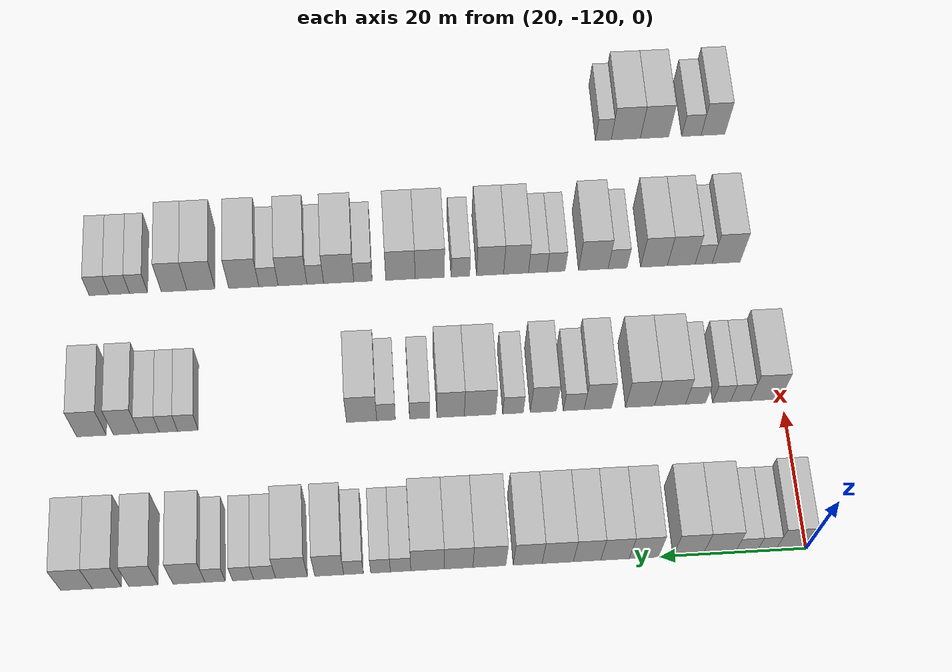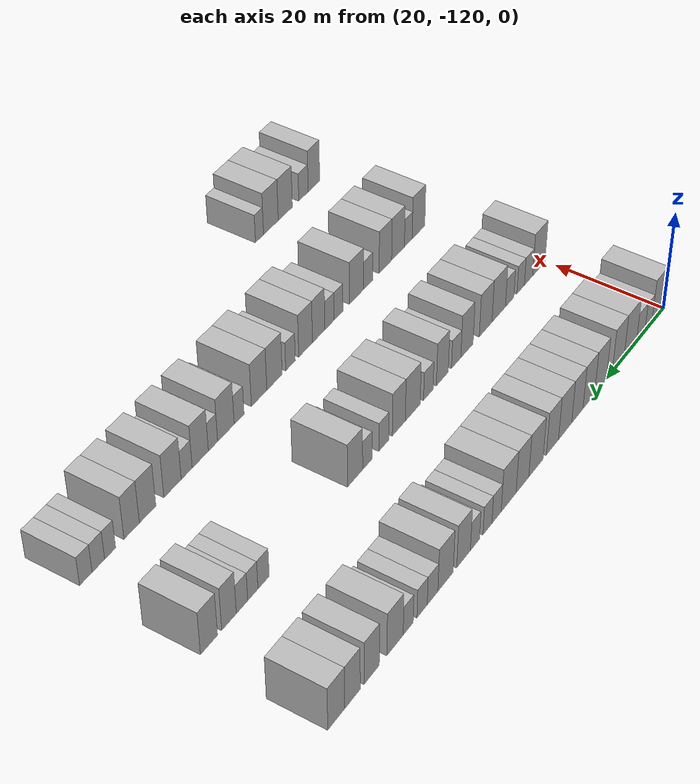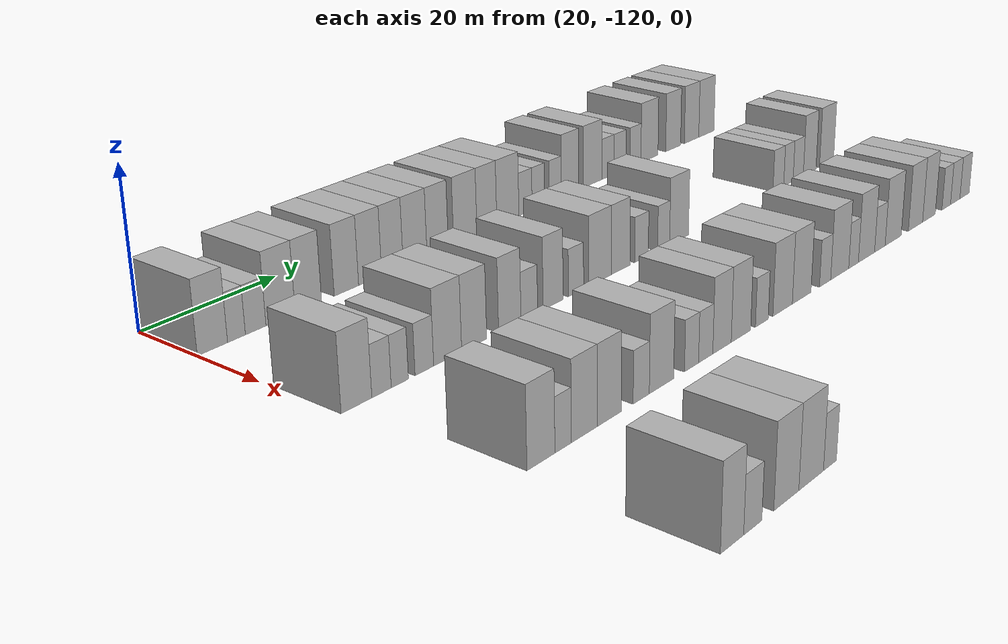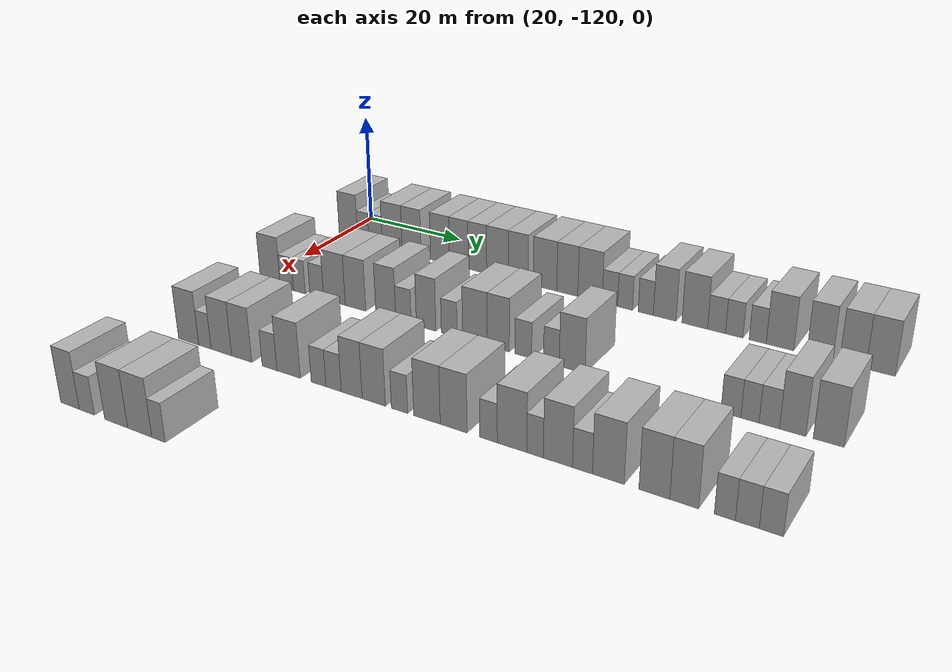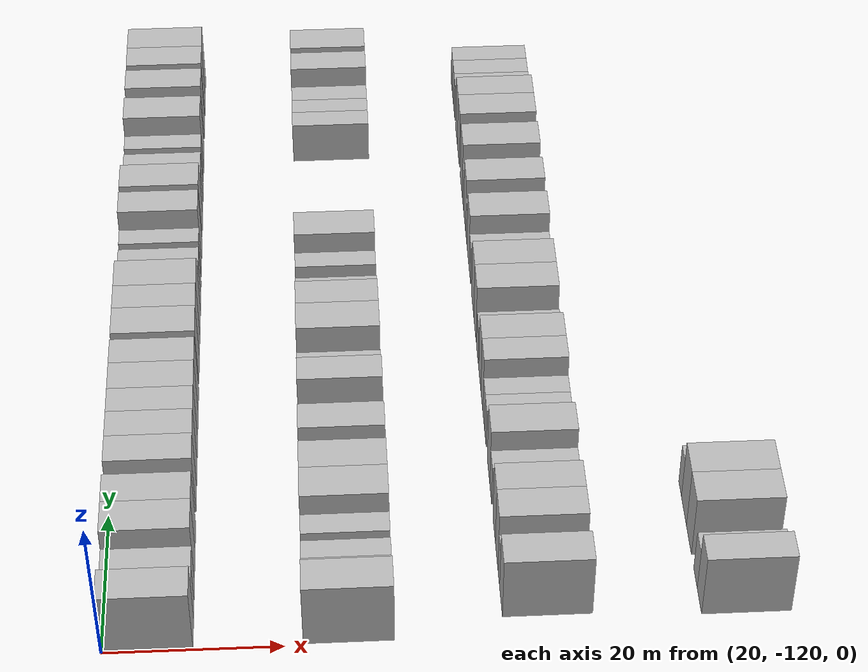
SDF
<sdf version="1.6">
 <world name="default">
  <model name="building_56">
   <static>1</static>
   <pose>25.0000 -117.8487 0 0.000000 0.000000 0.000000</pose>
   <link name="link">
    <pose>0 0 4.50 0 0 0</pose>
    <collision name="collision"><geometry><box><size>10.0000 4.1759 9.0000</size></box></geometry></collision>
    <visual name="visual">
     <cast_shadows>0</cast_shadows>
     <geometry><box><size>10.0000 4.1759 9.0000</size></box></geometry>
     <material>
      <script>
       <uri>model://HANNAS_wall/materials/scripts</uri>
       <uri>model://HANNAS_wall/materials/textures</uri>
       <name>vrc/HANNAS_wall</name>
      </script>
     </material>
    </visual>
   </link>
  </model>
  <model name="building_57">
   <static>1</static>
   <pose>25.0000 -114.4972 0 0.000000 0.000000 0.000000</pose>
   <link name="link">
    <pose>0 0 3.00 0 0 0</pose>
    <collision name="collision"><geometry><box><size>10.0000 2.5272 6.0000</size></box></geometry></collision>
    <visual name="visual">
     <cast_shadows>0</cast_shadows>
     <geometry><box><size>10.0000 2.5272 6.0000</size></box></geometry>
     <material>
      <script>
       <uri>model://HANNAS_wall/materials/scripts</uri>
       <uri>model://HANNAS_wall/materials/textures</uri>
       <name>vrc/HANNAS_wall</name>
      </script>
     </material>
    </visual>
   </link>
  </model>
  <model name="building_58">
   <static>1</static>
   <pose>25.0000 -111.7395 0 0.000000 0.000000 0.000000</pose>
   <link name="link">
    <pose>0 0 3.00 0 0 0</pose>
    <collision name="collision"><geometry><box><size>10.0000 2.9881 6.0000</size></box></geometry></collision>
    <visual name="visual">
     <cast_shadows>0</cast_shadows>
     <geometry><box><size>10.0000 2.9881 6.0000</size></box></geometry>
     <material>
      <script>
       <uri>model://HANNAS_wall/materials/scripts</uri>
       <uri>model://HANNAS_wall/materials/textures</uri>
       <name>vrc/HANNAS_wall</name>
      </script>
     </material>
    </visual>
   </link>
  </model>
  <model name="building_59">
   <static>1</static>
   <pose>25.0000 -108.0608 0 0.000000 0.000000 0.000000</pose>
   <link name="link">
    <pose>0 0 4.50 0 0 0</pose>
    <collision name="collision"><geometry><box><size>10.0000 4.3694 9.0000</size></box></geometry></collision>
    <visual name="visual">
     <cast_shadows>0</cast_shadows>
     <geometry><box><size>10.0000 4.3694 9.0000</size></box></geometry>
     <material>
      <script>
       <uri>model://HANNAS_wall/materials/scripts</uri>
       <uri>model://HANNAS_wall/materials/textures</uri>
       <name>vrc/HANNAS_wall</name>
      </script>
     </material>
    </visual>
   </link>
  </model>
  <model name="building_60">
   <static>1</static>
   <pose>25.0000 -103.8270 0 0.000000 0.000000 0.000000</pose>
   <link name="link">
    <pose>0 0 4.50 0 0 0</pose>
    <collision name="collision"><geometry><box><size>10.0000 4.0984 9.0000</size></box></geometry></collision>
    <visual name="visual">
     <cast_shadows>0</cast_shadows>
     <geometry><box><size>10.0000 4.0984 9.0000</size></box></geometry>
     <material>
      <script>
       <uri>model://HANNAS_wall/materials/scripts</uri>
       <uri>model://HANNAS_wall/materials/textures</uri>
       <name>vrc/HANNAS_wall</name>
      </script>
     </material>
    </visual>
   </link>
  </model>
  <model name="building_61">
   <static>1</static>
   <pose>25.0000 -97.7860 0 0.000000 0.000000 0.000000</pose>
   <link name="link">
    <pose>0 0 4.50 0 0 0</pose>
    <collision name="collision"><geometry><box><size>10.0000 3.9835 9.0000</size></box></geometry></collision>
    <visual name="visual">
     <cast_shadows>0</cast_shadows>
     <geometry><box><size>10.0000 3.9835 9.0000</size></box></geometry>
     <material>
      <script>
       <uri>model://HANNAS_wall/materials/scripts</uri>
       <uri>model://HANNAS_wall/materials/textures</uri>
       <name>vrc/HANNAS_wall</name>
      </script>
     </material>
    </visual>
   </link>
  </model>
  <model name="building_62">
   <static>1</static>
   <pose>25.0000 -93.8536 0 0.000000 0.000000 0.000000</pose>
   <link name="link">
    <pose>0 0 4.50 0 0 0</pose>
    <collision name="collision"><geometry><box><size>10.0000 3.8813 9.0000</size></box></geometry></collision>
    <visual name="visual">
     <cast_shadows>0</cast_shadows>
     <geometry><box><size>10.0000 3.8813 9.0000</size></box></geometry>
     <material>
      <script>
       <uri>model://HANNAS_wall/materials/scripts</uri>
       <uri>model://HANNAS_wall/materials/textures</uri>
       <name>vrc/HANNAS_wall</name>
      </script>
     </material>
    </visual>
   </link>
  </model>
  <model name="building_63">
   <static>1</static>
   <pose>25.0000 -90.0538 0 0.000000 0.000000 0.000000</pose>
   <link name="link">
    <pose>0 0 4.50 0 0 0</pose>
    <collision name="collision"><geometry><box><size>10.0000 3.7184 9.0000</size></box></geometry></collision>
    <visual name="visual">
     <cast_shadows>0</cast_shadows>
     <geometry><box><size>10.0000 3.7184 9.0000</size></box></geometry>
     <material>
      <script>
       <uri>model://HANNAS_wall/materials/scripts</uri>
       <uri>model://HANNAS_wall/materials/textures</uri>
       <name>vrc/HANNAS_wall</name>
      </script>
     </material>
    </visual>
   </link>
  </model>
  <model name="building_64">
   <static>1</static>
   <pose>25.0000 -86.0671 0 0.000000 0.000000 0.000000</pose>
   <link name="link">
    <pose>0 0 4.50 0 0 0</pose>
    <collision name="collision"><geometry><box><size>10.0000 4.2550 9.0000</size></box></geometry></collision>
    <visual name="visual">
     <cast_shadows>0</cast_shadows>
     <geometry><box><size>10.0000 4.2550 9.0000</size></box></geometry>
     <material>
      <script>
       <uri>model://HANNAS_wall/materials/scripts</uri>
       <uri>model://HANNAS_wall/materials/textures</uri>
       <name>vrc/HANNAS_wall</name>
      </script>
     </material>
    </visual>
   </link>
  </model>
  <model name="building_65">
   <static>1</static>
   <pose>25.0000 -81.9779 0 0.000000 0.000000 0.000000</pose>
   <link name="link">
    <pose>0 0 4.50 0 0 0</pose>
    <collision name="collision"><geometry><box><size>10.0000 3.9235 9.0000</size></box></geometry></collision>
    <visual name="visual">
     <cast_shadows>0</cast_shadows>
     <geometry><box><size>10.0000 3.9235 9.0000</size></box></geometry>
     <material>
      <script>
       <uri>model://HANNAS_wall/materials/scripts</uri>
       <uri>model://HANNAS_wall/materials/textures</uri>
       <name>vrc/HANNAS_wall</name>
      </script>
     </material>
    </visual>
   </link>
  </model>
  <model name="building_66">
   <static>1</static>
   <pose>25.0000 -76.7819 0 0.000000 0.000000 0.000000</pose>
   <link name="link">
    <pose>0 0 4.50 0 0 0</pose>
    <collision name="collision"><geometry><box><size>10.0000 4.4684 9.0000</size></box></geometry></collision>
    <visual name="visual">
     <cast_shadows>0</cast_shadows>
     <geometry><box><size>10.0000 4.4684 9.0000</size></box></geometry>
     <material>
      <script>
       <uri>model://HANNAS_wall/materials/scripts</uri>
       <uri>model://HANNAS_wall/materials/textures</uri>
       <name>vrc/HANNAS_wall</name>
      </script>
     </material>
    </visual>
   </link>
  </model>
  <model name="building_67">
   <static>1</static>
   <pose>25.0000 -72.5863 0 0.000000 0.000000 0.000000</pose>
   <link name="link">
    <pose>0 0 4.50 0 0 0</pose>
    <collision name="collision"><geometry><box><size>10.0000 3.9229 9.0000</size></box></geometry></collision>
    <visual name="visual">
     <cast_shadows>0</cast_shadows>
     <geometry><box><size>10.0000 3.9229 9.0000</size></box></geometry>
     <material>
      <script>
       <uri>model://HANNAS_wall/materials/scripts</uri>
       <uri>model://HANNAS_wall/materials/textures</uri>
       <name>vrc/HANNAS_wall</name>
      </script>
     </material>
    </visual>
   </link>
  </model>
  <model name="building_68">
   <static>1</static>
   <pose>25.0000 -68.3762 0 0.000000 0.000000 0.000000</pose>
   <link name="link">
    <pose>0 0 4.50 0 0 0</pose>
    <collision name="collision"><geometry><box><size>10.0000 4.4973 9.0000</size></box></geometry></collision>
    <visual name="visual">
     <cast_shadows>0</cast_shadows>
     <geometry><box><size>10.0000 4.4973 9.0000</size></box></geometry>
     <material>
      <script>
       <uri>model://HANNAS_wall/materials/scripts</uri>
       <uri>model://HANNAS_wall/materials/textures</uri>
       <name>vrc/HANNAS_wall</name>
      </script>
     </material>
    </visual>
   </link>
  </model>
  <model name="building_69">
   <static>1</static>
   <pose>25.0000 -64.7457 0 0.000000 0.000000 0.000000</pose>
   <link name="link">
    <pose>0 0 3.00 0 0 0</pose>
    <collision name="collision"><geometry><box><size>10.0000 2.7636 6.0000</size></box></geometry></collision>
    <visual name="visual">
     <cast_shadows>0</cast_shadows>
     <geometry><box><size>10.0000 2.7636 6.0000</size></box></geometry>
     <material>
      <script>
       <uri>model://HANNAS_wall/materials/scripts</uri>
       <uri>model://HANNAS_wall/materials/textures</uri>
       <name>vrc/HANNAS_wall</name>
      </script>
     </material>
    </visual>
   </link>
  </model>
  <model name="building_70">
   <static>1</static>
   <pose>25.0000 -62.0378 0 0.000000 0.000000 0.000000</pose>
   <link name="link">
    <pose>0 0 3.00 0 0 0</pose>
    <collision name="collision"><geometry><box><size>10.0000 2.6523 6.0000</size></box></geometry></collision>
    <visual name="visual">
     <cast_shadows>0</cast_shadows>
     <geometry><box><size>10.0000 2.6523 6.0000</size></box></geometry>
     <material>
      <script>
       <uri>model://HANNAS_wall/materials/scripts</uri>
       <uri>model://HANNAS_wall/materials/textures</uri>
       <name>vrc/HANNAS_wall</name>
      </script>
     </material>
    </visual>
   </link>
  </model>
  <model name="building_71">
   <static>1</static>
   <pose>25.0000 -58.3904 0 0.000000 0.000000 0.000000</pose>
   <link name="link">
    <pose>0 0 3.00 0 0 0</pose>
    <collision name="collision"><geometry><box><size>10.0000 2.6423 6.0000</size></box></geometry></collision>
    <visual name="visual">
     <cast_shadows>0</cast_shadows>
     <geometry><box><size>10.0000 2.6423 6.0000</size></box></geometry>
     <material>
      <script>
       <uri>model://HANNAS_wall/materials/scripts</uri>
       <uri>model://HANNAS_wall/materials/textures</uri>
       <name>vrc/HANNAS_wall</name>
      </script>
     </material>
    </visual>
   </link>
  </model>
  <model name="building_72">
   <static>1</static>
   <pose>25.0000 -55.1116 0 0.000000 0.000000 0.000000</pose>
   <link name="link">
    <pose>0 0 4.50 0 0 0</pose>
    <collision name="collision"><geometry><box><size>10.0000 3.9153 9.0000</size></box></geometry></collision>
    <visual name="visual">
     <cast_shadows>0</cast_shadows>
     <geometry><box><size>10.0000 3.9153 9.0000</size></box></geometry>
     <material>
      <script>
       <uri>model://HANNAS_wall/materials/scripts</uri>
       <uri>model://HANNAS_wall/materials/textures</uri>
       <name>vrc/HANNAS_wall</name>
      </script>
     </material>
    </visual>
   </link>
  </model>
  <model name="building_73">
   <static>1</static>
   <pose>25.0000 -50.0067 0 0.000000 0.000000 0.000000</pose>
   <link name="link">
    <pose>0 0 4.50 0 0 0</pose>
    <collision name="collision"><geometry><box><size>10.0000 4.2946 9.0000</size></box></geometry></collision>
    <visual name="visual">
     <cast_shadows>0</cast_shadows>
     <geometry><box><size>10.0000 4.2946 9.0000</size></box></geometry>
     <material>
      <script>
       <uri>model://HANNAS_wall/materials/scripts</uri>
       <uri>model://HANNAS_wall/materials/textures</uri>
       <name>vrc/HANNAS_wall</name>
      </script>
     </material>
    </visual>
   </link>
  </model>
  <model name="building_74">
   <static>1</static>
   <pose>25.0000 -46.3844 0 0.000000 0.000000 0.000000</pose>
   <link name="link">
    <pose>0 0 3.00 0 0 0</pose>
    <collision name="collision"><geometry><box><size>10.0000 2.9500 6.0000</size></box></geometry></collision>
    <visual name="visual">
     <cast_shadows>0</cast_shadows>
     <geometry><box><size>10.0000 2.9500 6.0000</size></box></geometry>
     <material>
      <script>
       <uri>model://HANNAS_wall/materials/scripts</uri>
       <uri>model://HANNAS_wall/materials/textures</uri>
       <name>vrc/HANNAS_wall</name>
      </script>
     </material>
    </visual>
   </link>
  </model>
  <model name="building_75">
   <static>1</static>
   <pose>25.0000 -43.4953 0 0.000000 0.000000 0.000000</pose>
   <link name="link">
    <pose>0 0 3.00 0 0 0</pose>
    <collision name="collision"><geometry><box><size>10.0000 2.8283 6.0000</size></box></geometry></collision>
    <visual name="visual">
     <cast_shadows>0</cast_shadows>
     <geometry><box><size>10.0000 2.8283 6.0000</size></box></geometry>
     <material>
      <script>
       <uri>model://HANNAS_wall/materials/scripts</uri>
       <uri>model://HANNAS_wall/materials/textures</uri>
       <name>vrc/HANNAS_wall</name>
      </script>
     </material>
    </visual>
   </link>
  </model>
  <model name="building_76">
   <static>1</static>
   <pose>25.0000 -39.7241 0 0.000000 0.000000 0.000000</pose>
   <link name="link">
    <pose>0 0 3.00 0 0 0</pose>
    <collision name="collision"><geometry><box><size>10.0000 2.7141 6.0000</size></box></geometry></collision>
    <visual name="visual">
     <cast_shadows>0</cast_shadows>
     <geometry><box><size>10.0000 2.7141 6.0000</size></box></geometry>
     <material>
      <script>
       <uri>model://HANNAS_wall/materials/scripts</uri>
       <uri>model://HANNAS_wall/materials/textures</uri>
       <name>vrc/HANNAS_wall</name>
      </script>
     </material>
    </visual>
   </link>
  </model>
  <model name="building_77">
   <static>1</static>
   <pose>25.0000 -36.2111 0 0.000000 0.000000 0.000000</pose>
   <link name="link">
    <pose>0 0 4.50 0 0 0</pose>
    <collision name="collision"><geometry><box><size>10.0000 4.3118 9.0000</size></box></geometry></collision>
    <visual name="visual">
     <cast_shadows>0</cast_shadows>
     <geometry><box><size>10.0000 4.3118 9.0000</size></box></geometry>
     <material>
      <script>
       <uri>model://HANNAS_wall/materials/scripts</uri>
       <uri>model://HANNAS_wall/materials/textures</uri>
       <name>vrc/HANNAS_wall</name>
      </script>
     </material>
    </visual>
   </link>
  </model>
  <model name="building_78">
   <static>1</static>
   <pose>25.0000 -30.0892 0 0.000000 0.000000 0.000000</pose>
   <link name="link">
    <pose>0 0 4.50 0 0 0</pose>
    <collision name="collision"><geometry><box><size>10.0000 3.9320 9.0000</size></box></geometry></collision>
    <visual name="visual">
     <cast_shadows>0</cast_shadows>
     <geometry><box><size>10.0000 3.9320 9.0000</size></box></geometry>
     <material>
      <script>
       <uri>model://HANNAS_wall/materials/scripts</uri>
       <uri>model://HANNAS_wall/materials/textures</uri>
       <name>vrc/HANNAS_wall</name>
      </script>
     </material>
    </visual>
   </link>
  </model>
  <model name="building_79">
   <static>1</static>
   <pose>25.0000 -25.1634 0 0.000000 0.000000 0.000000</pose>
   <link name="link">
    <pose>0 0 4.50 0 0 0</pose>
    <collision name="collision"><geometry><box><size>10.0000 3.9196 9.0000</size></box></geometry></collision>
    <visual name="visual">
     <cast_shadows>0</cast_shadows>
     <geometry><box><size>10.0000 3.9196 9.0000</size></box></geometry>
     <material>
      <script>
       <uri>model://HANNAS_wall/materials/scripts</uri>
       <uri>model://HANNAS_wall/materials/textures</uri>
       <name>vrc/HANNAS_wall</name>
      </script>
     </material>
    </visual>
   </link>
  </model>
  <model name="building_80">
   <static>1</static>
   <pose>25.0000 -21.0916 0 0.000000 0.000000 0.000000</pose>
   <link name="link">
    <pose>0 0 4.50 0 0 0</pose>
    <collision name="collision"><geometry><box><size>10.0000 4.2241 9.0000</size></box></geometry></collision>
    <visual name="visual">
     <cast_shadows>0</cast_shadows>
     <geometry><box><size>10.0000 4.2241 9.0000</size></box></geometry>
     <material>
      <script>
       <uri>model://HANNAS_wall/materials/scripts</uri>
       <uri>model://HANNAS_wall/materials/textures</uri>
       <name>vrc/HANNAS_wall</name>
      </script>
     </material>
    </visual>
   </link>
  </model>
  <model name="building_238">
   <static>1</static>
   <pose>47.0000 -117.5903 0 0.000000 0.000000 0.000000</pose>
   <link name="link">
    <pose>0 0 4.50 0 0 0</pose>
    <collision name="collision"><geometry><box><size>10.0000 4.3043 9.0000</size></box></geometry></collision>
    <visual name="visual">
     <cast_shadows>0</cast_shadows>
     <geometry><box><size>10.0000 4.3043 9.0000</size></box></geometry>
     <material>
      <script>
       <uri>model://HANNAS_wall/materials/scripts</uri>
       <uri>model://HANNAS_wall/materials/textures</uri>
       <name>vrc/HANNAS_wall</name>
      </script>
     </material>
    </visual>
   </link>
  </model>
  <model name="building_239">
   <static>1</static>
   <pose>47.0000 -114.0368 0 0.000000 0.000000 0.000000</pose>
   <link name="link">
    <pose>0 0 3.00 0 0 0</pose>
    <collision name="collision"><geometry><box><size>10.0000 2.8027 6.0000</size></box></geometry></collision>
    <visual name="visual">
     <cast_shadows>0</cast_shadows>
     <geometry><box><size>10.0000 2.8027 6.0000</size></box></geometry>
     <material>
      <script>
       <uri>model://HANNAS_wall/materials/scripts</uri>
       <uri>model://HANNAS_wall/materials/textures</uri>
       <name>vrc/HANNAS_wall</name>
      </script>
     </material>
    </visual>
   </link>
  </model>
  <model name="building_240">
   <static>1</static>
   <pose>47.0000 -111.3630 0 0.000000 0.000000 0.000000</pose>
   <link name="link">
    <pose>0 0 3.00 0 0 0</pose>
    <collision name="collision"><geometry><box><size>10.0000 2.5449 6.0000</size></box></geometry></collision>
    <visual name="visual">
     <cast_shadows>0</cast_shadows>
     <geometry><box><size>10.0000 2.5449 6.0000</size></box></geometry>
     <material>
      <script>
       <uri>model://HANNAS_wall/materials/scripts</uri>
       <uri>model://HANNAS_wall/materials/textures</uri>
       <name>vrc/HANNAS_wall</name>
      </script>
     </material>
    </visual>
   </link>
  </model>
  <model name="building_241">
   <static>1</static>
   <pose>47.0000 -107.6647 0 0.000000 0.000000 0.000000</pose>
   <link name="link">
    <pose>0 0 3.00 0 0 0</pose>
    <collision name="collision"><geometry><box><size>10.0000 2.8516 6.0000</size></box></geometry></collision>
    <visual name="visual">
     <cast_shadows>0</cast_shadows>
     <geometry><box><size>10.0000 2.8516 6.0000</size></box></geometry>
     <material>
      <script>
       <uri>model://HANNAS_wall/materials/scripts</uri>
       <uri>model://HANNAS_wall/materials/textures</uri>
       <name>vrc/HANNAS_wall</name>
      </script>
     </material>
    </visual>
   </link>
  </model>
  <model name="building_242">
   <static>1</static>
   <pose>47.0000 -104.0226 0 0.000000 0.000000 0.000000</pose>
   <link name="link">
    <pose>0 0 4.50 0 0 0</pose>
    <collision name="collision"><geometry><box><size>10.0000 4.4327 9.0000</size></box></geometry></collision>
    <visual name="visual">
     <cast_shadows>0</cast_shadows>
     <geometry><box><size>10.0000 4.4327 9.0000</size></box></geometry>
     <material>
      <script>
       <uri>model://HANNAS_wall/materials/scripts</uri>
       <uri>model://HANNAS_wall/materials/textures</uri>
       <name>vrc/HANNAS_wall</name>
      </script>
     </material>
    </visual>
   </link>
  </model>
  <model name="building_243">
   <static>1</static>
   <pose>47.0000 -99.7467 0 0.000000 0.000000 0.000000</pose>
   <link name="link">
    <pose>0 0 4.50 0 0 0</pose>
    <collision name="collision"><geometry><box><size>10.0000 4.1191 9.0000</size></box></geometry></collision>
    <visual name="visual">
     <cast_shadows>0</cast_shadows>
     <geometry><box><size>10.0000 4.1191 9.0000</size></box></geometry>
     <material>
      <script>
       <uri>model://HANNAS_wall/materials/scripts</uri>
       <uri>model://HANNAS_wall/materials/textures</uri>
       <name>vrc/HANNAS_wall</name>
      </script>
     </material>
    </visual>
   </link>
  </model>
  <model name="building_244">
   <static>1</static>
   <pose>47.0000 -93.7500 0 0.000000 0.000000 0.000000</pose>
   <link name="link">
    <pose>0 0 4.50 0 0 0</pose>
    <collision name="collision"><geometry><box><size>10.0000 3.8743 9.0000</size></box></geometry></collision>
    <visual name="visual">
     <cast_shadows>0</cast_shadows>
     <geometry><box><size>10.0000 3.8743 9.0000</size></box></geometry>
     <material>
      <script>
       <uri>model://HANNAS_wall/materials/scripts</uri>
       <uri>model://HANNAS_wall/materials/textures</uri>
       <name>vrc/HANNAS_wall</name>
      </script>
     </material>
    </visual>
   </link>
  </model>
  <model name="building_245">
   <static>1</static>
   <pose>47.0000 -90.3319 0 0.000000 0.000000 0.000000</pose>
   <link name="link">
    <pose>0 0 3.00 0 0 0</pose>
    <collision name="collision"><geometry><box><size>10.0000 2.9618 6.0000</size></box></geometry></collision>
    <visual name="visual">
     <cast_shadows>0</cast_shadows>
     <geometry><box><size>10.0000 2.9618 6.0000</size></box></geometry>
     <material>
      <script>
       <uri>model://HANNAS_wall/materials/scripts</uri>
       <uri>model://HANNAS_wall/materials/textures</uri>
       <name>vrc/HANNAS_wall</name>
      </script>
     </material>
    </visual>
   </link>
  </model>
  <model name="building_246">
   <static>1</static>
   <pose>47.0000 -86.0115 0 0.000000 0.000000 0.000000</pose>
   <link name="link">
    <pose>0 0 4.50 0 0 0</pose>
    <collision name="collision"><geometry><box><size>10.0000 3.6789 9.0000</size></box></geometry></collision>
    <visual name="visual">
     <cast_shadows>0</cast_shadows>
     <geometry><box><size>10.0000 3.6789 9.0000</size></box></geometry>
     <material>
      <script>
       <uri>model://HANNAS_wall/materials/scripts</uri>
       <uri>model://HANNAS_wall/materials/textures</uri>
       <name>vrc/HANNAS_wall</name>
      </script>
     </material>
    </visual>
   </link>
  </model>
  <model name="building_247">
   <static>1</static>
   <pose>47.0000 -81.7189 0 0.000000 0.000000 0.000000</pose>
   <link name="link">
    <pose>0 0 3.00 0 0 0</pose>
    <collision name="collision"><geometry><box><size>10.0000 2.9064 6.0000</size></box></geometry></collision>
    <visual name="visual">
     <cast_shadows>0</cast_shadows>
     <geometry><box><size>10.0000 2.9064 6.0000</size></box></geometry>
     <material>
      <script>
       <uri>model://HANNAS_wall/materials/scripts</uri>
       <uri>model://HANNAS_wall/materials/textures</uri>
       <name>vrc/HANNAS_wall</name>
      </script>
     </material>
    </visual>
   </link>
  </model>
  <model name="building_248">
   <static>1</static>
   <pose>47.0000 -77.0469 0 0.000000 0.000000 0.000000</pose>
   <link name="link">
    <pose>0 0 4.50 0 0 0</pose>
    <collision name="collision"><geometry><box><size>10.0000 4.4375 9.0000</size></box></geometry></collision>
    <visual name="visual">
     <cast_shadows>0</cast_shadows>
     <geometry><box><size>10.0000 4.4375 9.0000</size></box></geometry>
     <material>
      <script>
       <uri>model://HANNAS_wall/materials/scripts</uri>
       <uri>model://HANNAS_wall/materials/textures</uri>
       <name>vrc/HANNAS_wall</name>
      </script>
     </material>
    </visual>
   </link>
  </model>
  <model name="building_249">
   <static>1</static>
   <pose>47.0000 -72.8980 0 0.000000 0.000000 0.000000</pose>
   <link name="link">
    <pose>0 0 4.50 0 0 0</pose>
    <collision name="collision"><geometry><box><size>10.0000 3.8602 9.0000</size></box></geometry></collision>
    <visual name="visual">
     <cast_shadows>0</cast_shadows>
     <geometry><box><size>10.0000 3.8602 9.0000</size></box></geometry>
     <material>
      <script>
       <uri>model://HANNAS_wall/materials/scripts</uri>
       <uri>model://HANNAS_wall/materials/textures</uri>
       <name>vrc/HANNAS_wall</name>
      </script>
     </material>
    </visual>
   </link>
  </model>
  <model name="building_250">
   <static>1</static>
   <pose>47.0000 -68.5308 0 0.000000 0.000000 0.000000</pose>
   <link name="link">
    <pose>0 0 3.00 0 0 0</pose>
    <collision name="collision"><geometry><box><size>10.0000 2.8742 6.0000</size></box></geometry></collision>
    <visual name="visual">
     <cast_shadows>0</cast_shadows>
     <geometry><box><size>10.0000 2.8742 6.0000</size></box></geometry>
     <material>
      <script>
       <uri>model://HANNAS_wall/materials/scripts</uri>
       <uri>model://HANNAS_wall/materials/textures</uri>
       <name>vrc/HANNAS_wall</name>
      </script>
     </material>
    </visual>
   </link>
  </model>
  <model name="building_251">
   <static>1</static>
   <pose>47.0000 -63.7763 0 0.000000 0.000000 0.000000</pose>
   <link name="link">
    <pose>0 0 3.00 0 0 0</pose>
    <collision name="collision"><geometry><box><size>10.0000 2.6347 6.0000</size></box></geometry></collision>
    <visual name="visual">
     <cast_shadows>0</cast_shadows>
     <geometry><box><size>10.0000 2.6347 6.0000</size></box></geometry>
     <material>
      <script>
       <uri>model://HANNAS_wall/materials/scripts</uri>
       <uri>model://HANNAS_wall/materials/textures</uri>
       <name>vrc/HANNAS_wall</name>
      </script>
     </material>
    </visual>
   </link>
  </model>
  <model name="building_252">
   <static>1</static>
   <pose>47.0000 -60.3356 0 0.000000 0.000000 0.000000</pose>
   <link name="link">
    <pose>0 0 4.50 0 0 0</pose>
    <collision name="collision"><geometry><box><size>10.0000 4.2467 9.0000</size></box></geometry></collision>
    <visual name="visual">
     <cast_shadows>0</cast_shadows>
     <geometry><box><size>10.0000 4.2467 9.0000</size></box></geometry>
     <material>
      <script>
       <uri>model://HANNAS_wall/materials/scripts</uri>
       <uri>model://HANNAS_wall/materials/textures</uri>
       <name>vrc/HANNAS_wall</name>
      </script>
     </material>
    </visual>
   </link>
  </model>
  <model name="building_253">
   <static>1</static>
   <pose>47.0000 -35.9007 0 0.000000 0.000000 0.000000</pose>
   <link name="link">
    <pose>0 0 3.00 0 0 0</pose>
    <collision name="collision"><geometry><box><size>10.0000 2.8744 6.0000</size></box></geometry></collision>
    <visual name="visual">
     <cast_shadows>0</cast_shadows>
     <geometry><box><size>10.0000 2.8744 6.0000</size></box></geometry>
     <material>
      <script>
       <uri>model://HANNAS_wall/materials/scripts</uri>
       <uri>model://HANNAS_wall/materials/textures</uri>
       <name>vrc/HANNAS_wall</name>
      </script>
     </material>
    </visual>
   </link>
  </model>
  <model name="building_254">
   <static>1</static>
   <pose>47.0000 -33.1793 0 0.000000 0.000000 0.000000</pose>
   <link name="link">
    <pose>0 0 3.00 0 0 0</pose>
    <collision name="collision"><geometry><box><size>10.0000 2.5685 6.0000</size></box></geometry></collision>
    <visual name="visual">
     <cast_shadows>0</cast_shadows>
     <geometry><box><size>10.0000 2.5685 6.0000</size></box></geometry>
     <material>
      <script>
       <uri>model://HANNAS_wall/materials/scripts</uri>
       <uri>model://HANNAS_wall/materials/textures</uri>
       <name>vrc/HANNAS_wall</name>
      </script>
     </material>
    </visual>
   </link>
  </model>
  <model name="building_255">
   <static>1</static>
   <pose>47.0000 -30.4765 0 0.000000 0.000000 0.000000</pose>
   <link name="link">
    <pose>0 0 3.00 0 0 0</pose>
    <collision name="collision"><geometry><box><size>10.0000 2.8370 6.0000</size></box></geometry></collision>
    <visual name="visual">
     <cast_shadows>0</cast_shadows>
     <geometry><box><size>10.0000 2.8370 6.0000</size></box></geometry>
     <material>
      <script>
       <uri>model://HANNAS_wall/materials/scripts</uri>
       <uri>model://HANNAS_wall/materials/textures</uri>
       <name>vrc/HANNAS_wall</name>
      </script>
     </material>
    </visual>
   </link>
  </model>
  <model name="building_256">
   <static>1</static>
   <pose>47.0000 -27.2536 0 0.000000 0.000000 0.000000</pose>
   <link name="link">
    <pose>0 0 4.50 0 0 0</pose>
    <collision name="collision"><geometry><box><size>10.0000 3.6088 9.0000</size></box></geometry></collision>
    <visual name="visual">
     <cast_shadows>0</cast_shadows>
     <geometry><box><size>10.0000 3.6088 9.0000</size></box></geometry>
     <material>
      <script>
       <uri>model://HANNAS_wall/materials/scripts</uri>
       <uri>model://HANNAS_wall/materials/textures</uri>
       <name>vrc/HANNAS_wall</name>
      </script>
     </material>
    </visual>
   </link>
  </model>
  <model name="building_257">
   <static>1</static>
   <pose>47.0000 -22.3882 0 0.000000 0.000000 0.000000</pose>
   <link name="link">
    <pose>0 0 4.50 0 0 0</pose>
    <collision name="collision"><geometry><box><size>10.0000 4.1220 9.0000</size></box></geometry></collision>
    <visual name="visual">
     <cast_shadows>0</cast_shadows>
     <geometry><box><size>10.0000 4.1220 9.0000</size></box></geometry>
     <material>
      <script>
       <uri>model://HANNAS_wall/materials/scripts</uri>
       <uri>model://HANNAS_wall/materials/textures</uri>
       <name>vrc/HANNAS_wall</name>
      </script>
     </material>
    </visual>
   </link>
  </model>
  <model name="building_427">
   <static>1</static>
   <pose>69.0000 -114.9938 0 0.000000 0.000000 0.000000</pose>
   <link name="link">
    <pose>0 0 4.50 0 0 0</pose>
    <collision name="collision"><geometry><box><size>10.0000 4.1623 9.0000</size></box></geometry></collision>
    <visual name="visual">
     <cast_shadows>0</cast_shadows>
     <geometry><box><size>10.0000 4.1623 9.0000</size></box></geometry>
     <material>
      <script>
       <uri>model://HANNAS_wall/materials/scripts</uri>
       <uri>model://HANNAS_wall/materials/textures</uri>
       <name>vrc/HANNAS_wall</name>
      </script>
     </material>
    </visual>
   </link>
  </model>
  <model name="building_428">
   <static>1</static>
   <pose>69.0000 -111.6530 0 0.000000 0.000000 0.000000</pose>
   <link name="link">
    <pose>0 0 3.00 0 0 0</pose>
    <collision name="collision"><geometry><box><size>10.0000 2.5192 6.0000</size></box></geometry></collision>
    <visual name="visual">
     <cast_shadows>0</cast_shadows>
     <geometry><box><size>10.0000 2.5192 6.0000</size></box></geometry>
     <material>
      <script>
       <uri>model://HANNAS_wall/materials/scripts</uri>
       <uri>model://HANNAS_wall/materials/textures</uri>
       <name>vrc/HANNAS_wall</name>
      </script>
     </material>
    </visual>
   </link>
  </model>
  <model name="building_429">
   <static>1</static>
   <pose>69.0000 -108.3375 0 0.000000 0.000000 0.000000</pose>
   <link name="link">
    <pose>0 0 4.50 0 0 0</pose>
    <collision name="collision"><geometry><box><size>10.0000 4.1119 9.0000</size></box></geometry></collision>
    <visual name="visual">
     <cast_shadows>0</cast_shadows>
     <geometry><box><size>10.0000 4.1119 9.0000</size></box></geometry>
     <material>
      <script>
       <uri>model://HANNAS_wall/materials/scripts</uri>
       <uri>model://HANNAS_wall/materials/textures</uri>
       <name>vrc/HANNAS_wall</name>
      </script>
     </material>
    </visual>
   </link>
  </model>
  <model name="building_430">
   <static>1</static>
   <pose>69.0000 -104.2997 0 0.000000 0.000000 0.000000</pose>
   <link name="link">
    <pose>0 0 4.50 0 0 0</pose>
    <collision name="collision"><geometry><box><size>10.0000 3.9636 9.0000</size></box></geometry></collision>
    <visual name="visual">
     <cast_shadows>0</cast_shadows>
     <geometry><box><size>10.0000 3.9636 9.0000</size></box></geometry>
     <material>
      <script>
       <uri>model://HANNAS_wall/materials/scripts</uri>
       <uri>model://HANNAS_wall/materials/textures</uri>
       <name>vrc/HANNAS_wall</name>
      </script>
     </material>
    </visual>
   </link>
  </model>
  <model name="building_431">
   <static>1</static>
   <pose>69.0000 -98.9158 0 0.000000 0.000000 0.000000</pose>
   <link name="link">
    <pose>0 0 3.00 0 0 0</pose>
    <collision name="collision"><geometry><box><size>10.0000 2.8044 6.0000</size></box></geometry></collision>
    <visual name="visual">
     <cast_shadows>0</cast_shadows>
     <geometry><box><size>10.0000 2.8044 6.0000</size></box></geometry>
     <material>
      <script>
       <uri>model://HANNAS_wall/materials/scripts</uri>
       <uri>model://HANNAS_wall/materials/textures</uri>
       <name>vrc/HANNAS_wall</name>
      </script>
     </material>
    </visual>
   </link>
  </model>
  <model name="building_432">
   <static>1</static>
   <pose>69.0000 -95.3265 0 0.000000 0.000000 0.000000</pose>
   <link name="link">
    <pose>0 0 4.50 0 0 0</pose>
    <collision name="collision"><geometry><box><size>10.0000 4.3743 9.0000</size></box></geometry></collision>
    <visual name="visual">
     <cast_shadows>0</cast_shadows>
     <geometry><box><size>10.0000 4.3743 9.0000</size></box></geometry>
     <material>
      <script>
       <uri>model://HANNAS_wall/materials/scripts</uri>
       <uri>model://HANNAS_wall/materials/textures</uri>
       <name>vrc/HANNAS_wall</name>
      </script>
     </material>
    </visual>
   </link>
  </model>
  <model name="building_433">
   <static>1</static>
   <pose>69.0000 -89.8105 0 0.000000 0.000000 0.000000</pose>
   <link name="link">
    <pose>0 0 3.00 0 0 0</pose>
    <collision name="collision"><geometry><box><size>10.0000 2.6577 6.0000</size></box></geometry></collision>
    <visual name="visual">
     <cast_shadows>0</cast_shadows>
     <geometry><box><size>10.0000 2.6577 6.0000</size></box></geometry>
     <material>
      <script>
       <uri>model://HANNAS_wall/materials/scripts</uri>
       <uri>model://HANNAS_wall/materials/textures</uri>
       <name>vrc/HANNAS_wall</name>
      </script>
     </material>
    </visual>
   </link>
  </model>
  <model name="building_434">
   <static>1</static>
   <pose>69.0000 -87.1051 0 0.000000 0.000000 0.000000</pose>
   <link name="link">
    <pose>0 0 3.00 0 0 0</pose>
    <collision name="collision"><geometry><box><size>10.0000 2.7531 6.0000</size></box></geometry></collision>
    <visual name="visual">
     <cast_shadows>0</cast_shadows>
     <geometry><box><size>10.0000 2.7531 6.0000</size></box></geometry>
     <material>
      <script>
       <uri>model://HANNAS_wall/materials/scripts</uri>
       <uri>model://HANNAS_wall/materials/textures</uri>
       <name>vrc/HANNAS_wall</name>
      </script>
     </material>
    </visual>
   </link>
  </model>
  <model name="building_435">
   <static>1</static>
   <pose>69.0000 -83.8964 0 0.000000 0.000000 0.000000</pose>
   <link name="link">
    <pose>0 0 4.50 0 0 0</pose>
    <collision name="collision"><geometry><box><size>10.0000 3.6643 9.0000</size></box></geometry></collision>
    <visual name="visual">
     <cast_shadows>0</cast_shadows>
     <geometry><box><size>10.0000 3.6643 9.0000</size></box></geometry>
     <material>
      <script>
       <uri>model://HANNAS_wall/materials/scripts</uri>
       <uri>model://HANNAS_wall/materials/textures</uri>
       <name>vrc/HANNAS_wall</name>
      </script>
     </material>
    </visual>
   </link>
  </model>
  <model name="building_436">
   <static>1</static>
   <pose>69.0000 -80.0698 0 0.000000 0.000000 0.000000</pose>
   <link name="link">
    <pose>0 0 4.50 0 0 0</pose>
    <collision name="collision"><geometry><box><size>10.0000 3.9888 9.0000</size></box></geometry></collision>
    <visual name="visual">
     <cast_shadows>0</cast_shadows>
     <geometry><box><size>10.0000 3.9888 9.0000</size></box></geometry>
     <material>
      <script>
       <uri>model://HANNAS_wall/materials/scripts</uri>
       <uri>model://HANNAS_wall/materials/textures</uri>
       <name>vrc/HANNAS_wall</name>
      </script>
     </material>
    </visual>
   </link>
  </model>
  <model name="building_437">
   <static>1</static>
   <pose>69.0000 -75.7055 0 0.000000 0.000000 0.000000</pose>
   <link name="link">
    <pose>0 0 3.00 0 0 0</pose>
    <collision name="collision"><geometry><box><size>10.0000 2.7397 6.0000</size></box></geometry></collision>
    <visual name="visual">
     <cast_shadows>0</cast_shadows>
     <geometry><box><size>10.0000 2.7397 6.0000</size></box></geometry>
     <material>
      <script>
       <uri>model://HANNAS_wall/materials/scripts</uri>
       <uri>model://HANNAS_wall/materials/textures</uri>
       <name>vrc/HANNAS_wall</name>
      </script>
     </material>
    </visual>
   </link>
  </model>
  <model name="building_438">
   <static>1</static>
   <pose>69.0000 -71.1767 0 0.000000 0.000000 0.000000</pose>
   <link name="link">
    <pose>0 0 4.50 0 0 0</pose>
    <collision name="collision"><geometry><box><size>10.0000 4.3180 9.0000</size></box></geometry></collision>
    <visual name="visual">
     <cast_shadows>0</cast_shadows>
     <geometry><box><size>10.0000 4.3180 9.0000</size></box></geometry>
     <material>
      <script>
       <uri>model://HANNAS_wall/materials/scripts</uri>
       <uri>model://HANNAS_wall/materials/textures</uri>
       <name>vrc/HANNAS_wall</name>
      </script>
     </material>
    </visual>
   </link>
  </model>
  <model name="building_439">
   <static>1</static>
   <pose>69.0000 -66.8743 0 0.000000 0.000000 0.000000</pose>
   <link name="link">
    <pose>0 0 4.50 0 0 0</pose>
    <collision name="collision"><geometry><box><size>10.0000 4.2867 9.0000</size></box></geometry></collision>
    <visual name="visual">
     <cast_shadows>0</cast_shadows>
     <geometry><box><size>10.0000 4.2867 9.0000</size></box></geometry>
     <material>
      <script>
       <uri>model://HANNAS_wall/materials/scripts</uri>
       <uri>model://HANNAS_wall/materials/textures</uri>
       <name>vrc/HANNAS_wall</name>
      </script>
     </material>
    </visual>
   </link>
  </model>
  <model name="building_440">
   <static>1</static>
   <pose>69.0000 -61.3905 0 0.000000 0.000000 0.000000</pose>
   <link name="link">
    <pose>0 0 3.00 0 0 0</pose>
    <collision name="collision"><geometry><box><size>10.0000 2.6811 6.0000</size></box></geometry></collision>
    <visual name="visual">
     <cast_shadows>0</cast_shadows>
     <geometry><box><size>10.0000 2.6811 6.0000</size></box></geometry>
     <material>
      <script>
       <uri>model://HANNAS_wall/materials/scripts</uri>
       <uri>model://HANNAS_wall/materials/textures</uri>
       <name>vrc/HANNAS_wall</name>
      </script>
     </material>
    </visual>
   </link>
  </model>
  <model name="building_441">
   <static>1</static>
   <pose>69.0000 -57.8252 0 0.000000 0.000000 0.000000</pose>
   <link name="link">
    <pose>0 0 4.50 0 0 0</pose>
    <collision name="collision"><geometry><box><size>10.0000 4.4494 9.0000</size></box></geometry></collision>
    <visual name="visual">
     <cast_shadows>0</cast_shadows>
     <geometry><box><size>10.0000 4.4494 9.0000</size></box></geometry>
     <material>
      <script>
       <uri>model://HANNAS_wall/materials/scripts</uri>
       <uri>model://HANNAS_wall/materials/textures</uri>
       <name>vrc/HANNAS_wall</name>
      </script>
     </material>
    </visual>
   </link>
  </model>
  <model name="building_442">
   <static>1</static>
   <pose>69.0000 -54.3804 0 0.000000 0.000000 0.000000</pose>
   <link name="link">
    <pose>0 0 3.00 0 0 0</pose>
    <collision name="collision"><geometry><box><size>10.0000 2.4402 6.0000</size></box></geometry></collision>
    <visual name="visual">
     <cast_shadows>0</cast_shadows>
     <geometry><box><size>10.0000 2.4402 6.0000</size></box></geometry>
     <material>
      <script>
       <uri>model://HANNAS_wall/materials/scripts</uri>
       <uri>model://HANNAS_wall/materials/textures</uri>
       <name>vrc/HANNAS_wall</name>
      </script>
     </material>
    </visual>
   </link>
  </model>
  <model name="building_443">
   <static>1</static>
   <pose>69.0000 -51.0480 0 0.000000 0.000000 0.000000</pose>
   <link name="link">
    <pose>0 0 4.50 0 0 0</pose>
    <collision name="collision"><geometry><box><size>10.0000 4.2245 9.0000</size></box></geometry></collision>
    <visual name="visual">
     <cast_shadows>0</cast_shadows>
     <geometry><box><size>10.0000 4.2245 9.0000</size></box></geometry>
     <material>
      <script>
       <uri>model://HANNAS_wall/materials/scripts</uri>
       <uri>model://HANNAS_wall/materials/textures</uri>
       <name>vrc/HANNAS_wall</name>
      </script>
     </material>
    </visual>
   </link>
  </model>
  <model name="building_444">
   <static>1</static>
   <pose>69.0000 -47.5284 0 0.000000 0.000000 0.000000</pose>
   <link name="link">
    <pose>0 0 3.00 0 0 0</pose>
    <collision name="collision"><geometry><box><size>10.0000 2.8148 6.0000</size></box></geometry></collision>
    <visual name="visual">
     <cast_shadows>0</cast_shadows>
     <geometry><box><size>10.0000 2.8148 6.0000</size></box></geometry>
     <material>
      <script>
       <uri>model://HANNAS_wall/materials/scripts</uri>
       <uri>model://HANNAS_wall/materials/textures</uri>
       <name>vrc/HANNAS_wall</name>
      </script>
     </material>
    </visual>
   </link>
  </model>
  <model name="building_445">
   <static>1</static>
   <pose>69.0000 -43.9135 0 0.000000 0.000000 0.000000</pose>
   <link name="link">
    <pose>0 0 4.50 0 0 0</pose>
    <collision name="collision"><geometry><box><size>10.0000 4.4149 9.0000</size></box></geometry></collision>
    <visual name="visual">
     <cast_shadows>0</cast_shadows>
     <geometry><box><size>10.0000 4.4149 9.0000</size></box></geometry>
     <material>
      <script>
       <uri>model://HANNAS_wall/materials/scripts</uri>
       <uri>model://HANNAS_wall/materials/textures</uri>
       <name>vrc/HANNAS_wall</name>
      </script>
     </material>
    </visual>
   </link>
  </model>
  <model name="building_446">
   <static>1</static>
   <pose>69.0000 -37.6572 0 0.000000 0.000000 0.000000</pose>
   <link name="link">
    <pose>0 0 4.50 0 0 0</pose>
    <collision name="collision"><geometry><box><size>10.0000 4.0977 9.0000</size></box></geometry></collision>
    <visual name="visual">
     <cast_shadows>0</cast_shadows>
     <geometry><box><size>10.0000 4.0977 9.0000</size></box></geometry>
     <material>
      <script>
       <uri>model://HANNAS_wall/materials/scripts</uri>
       <uri>model://HANNAS_wall/materials/textures</uri>
       <name>vrc/HANNAS_wall</name>
      </script>
     </material>
    </visual>
   </link>
  </model>
  <model name="building_447">
   <static>1</static>
   <pose>69.0000 -33.7288 0 0.000000 0.000000 0.000000</pose>
   <link name="link">
    <pose>0 0 4.50 0 0 0</pose>
    <collision name="collision"><geometry><box><size>10.0000 3.7591 9.0000</size></box></geometry></collision>
    <visual name="visual">
     <cast_shadows>0</cast_shadows>
     <geometry><box><size>10.0000 3.7591 9.0000</size></box></geometry>
     <material>
      <script>
       <uri>model://HANNAS_wall/materials/scripts</uri>
       <uri>model://HANNAS_wall/materials/textures</uri>
       <name>vrc/HANNAS_wall</name>
      </script>
     </material>
    </visual>
   </link>
  </model>
  <model name="building_448">
   <static>1</static>
   <pose>69.0000 -28.5362 0 0.000000 0.000000 0.000000</pose>
   <link name="link">
    <pose>0 0 3.00 0 0 0</pose>
    <collision name="collision"><geometry><box><size>10.0000 2.6260 6.0000</size></box></geometry></collision>
    <visual name="visual">
     <cast_shadows>0</cast_shadows>
     <geometry><box><size>10.0000 2.6260 6.0000</size></box></geometry>
     <material>
      <script>
       <uri>model://HANNAS_wall/materials/scripts</uri>
       <uri>model://HANNAS_wall/materials/textures</uri>
       <name>vrc/HANNAS_wall</name>
      </script>
     </material>
    </visual>
   </link>
  </model>
  <model name="building_449">
   <static>1</static>
   <pose>69.0000 -25.7481 0 0.000000 0.000000 0.000000</pose>
   <link name="link">
    <pose>0 0 3.00 0 0 0</pose>
    <collision name="collision"><geometry><box><size>10.0000 2.9502 6.0000</size></box></geometry></collision>
    <visual name="visual">
     <cast_shadows>0</cast_shadows>
     <geometry><box><size>10.0000 2.9502 6.0000</size></box></geometry>
     <material>
      <script>
       <uri>model://HANNAS_wall/materials/scripts</uri>
       <uri>model://HANNAS_wall/materials/textures</uri>
       <name>vrc/HANNAS_wall</name>
      </script>
     </material>
    </visual>
   </link>
  </model>
  <model name="building_450">
   <static>1</static>
   <pose>69.0000 -22.8032 0 0.000000 0.000000 0.000000</pose>
   <link name="link">
    <pose>0 0 3.00 0 0 0</pose>
    <collision name="collision"><geometry><box><size>10.0000 2.9397 6.0000</size></box></geometry></collision>
    <visual name="visual">
     <cast_shadows>0</cast_shadows>
     <geometry><box><size>10.0000 2.9397 6.0000</size></box></geometry>
     <material>
      <script>
       <uri>model://HANNAS_wall/materials/scripts</uri>
       <uri>model://HANNAS_wall/materials/textures</uri>
       <name>vrc/HANNAS_wall</name>
      </script>
     </material>
    </visual>
   </link>
  </model>
  <model name="building_601">
   <static>1</static>
   <pose>91.0000 -115.9500 0 0.000000 0.000000 0.000000</pose>
   <link name="link">
    <pose>0 0 4.50 0 0 0</pose>
    <collision name="collision"><geometry><box><size>10.0000 3.6798 9.0000</size></box></geometry></collision>
    <visual name="visual">
     <cast_shadows>0</cast_shadows>
     <geometry><box><size>10.0000 3.6798 9.0000</size></box></geometry>
     <material>
      <script>
       <uri>model://HANNAS_wall/materials/scripts</uri>
       <uri>model://HANNAS_wall/materials/textures</uri>
       <name>vrc/HANNAS_wall</name>
      </script>
     </material>
    </visual>
   </link>
  </model>
  <model name="building_602">
   <static>1</static>
   <pose>91.0000 -112.6209 0 0.000000 0.000000 0.000000</pose>
   <link name="link">
    <pose>0 0 3.00 0 0 0</pose>
    <collision name="collision"><geometry><box><size>10.0000 2.9783 6.0000</size></box></geometry></collision>
    <visual name="visual">
     <cast_shadows>0</cast_shadows>
     <geometry><box><size>10.0000 2.9783 6.0000</size></box></geometry>
     <material>
      <script>
       <uri>model://HANNAS_wall/materials/scripts</uri>
       <uri>model://HANNAS_wall/materials/textures</uri>
       <name>vrc/HANNAS_wall</name>
      </script>
     </material>
    </visual>
   </link>
  </model>
  <model name="building_603">
   <static>1</static>
   <pose>91.0000 -106.9534 0 0.000000 0.000000 0.000000</pose>
   <link name="link">
    <pose>0 0 4.50 0 0 0</pose>
    <collision name="collision"><geometry><box><size>10.0000 4.3568 9.0000</size></box></geometry></collision>
    <visual name="visual">
     <cast_shadows>0</cast_shadows>
     <geometry><box><size>10.0000 4.3568 9.0000</size></box></geometry>
     <material>
      <script>
       <uri>model://HANNAS_wall/materials/scripts</uri>
       <uri>model://HANNAS_wall/materials/textures</uri>
       <name>vrc/HANNAS_wall</name>
      </script>
     </material>
    </visual>
   </link>
  </model>
  <model name="building_604">
   <static>1</static>
   <pose>91.0000 -102.5323 0 0.000000 0.000000 0.000000</pose>
   <link name="link">
    <pose>0 0 4.50 0 0 0</pose>
    <collision name="collision"><geometry><box><size>10.0000 4.4854 9.0000</size></box></geometry></collision>
    <visual name="visual">
     <cast_shadows>0</cast_shadows>
     <geometry><box><size>10.0000 4.4854 9.0000</size></box></geometry>
     <material>
      <script>
       <uri>model://HANNAS_wall/materials/scripts</uri>
       <uri>model://HANNAS_wall/materials/textures</uri>
       <name>vrc/HANNAS_wall</name>
      </script>
     </material>
    </visual>
   </link>
  </model>
  <model name="building_605">
   <static>1</static>
   <pose>91.0000 -99.0695 0 0.000000 0.000000 0.000000</pose>
   <link name="link">
    <pose>0 0 3.00 0 0 0</pose>
    <collision name="collision"><geometry><box><size>10.0000 2.4402 6.0000</size></box></geometry></collision>
    <visual name="visual">
     <cast_shadows>0</cast_shadows>
     <geometry><box><size>10.0000 2.4402 6.0000</size></box></geometry>
     <material>
      <script>
       <uri>model://HANNAS_wall/materials/scripts</uri>
       <uri>model://HANNAS_wall/materials/textures</uri>
       <name>vrc/HANNAS_wall</name>
      </script>
     </material>
    </visual>
   </link>
  </model>
 </world>
</sdf>
